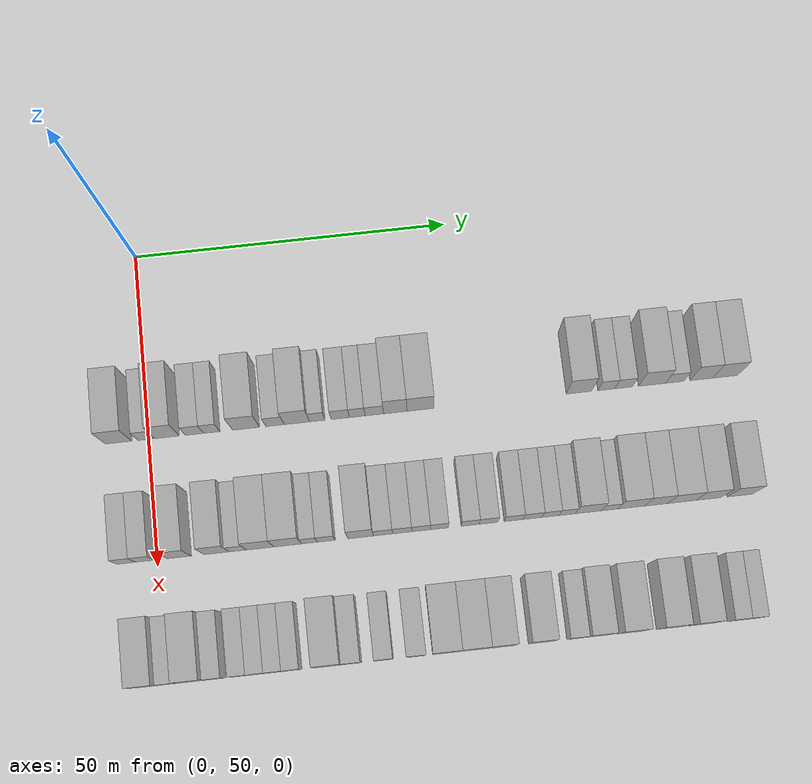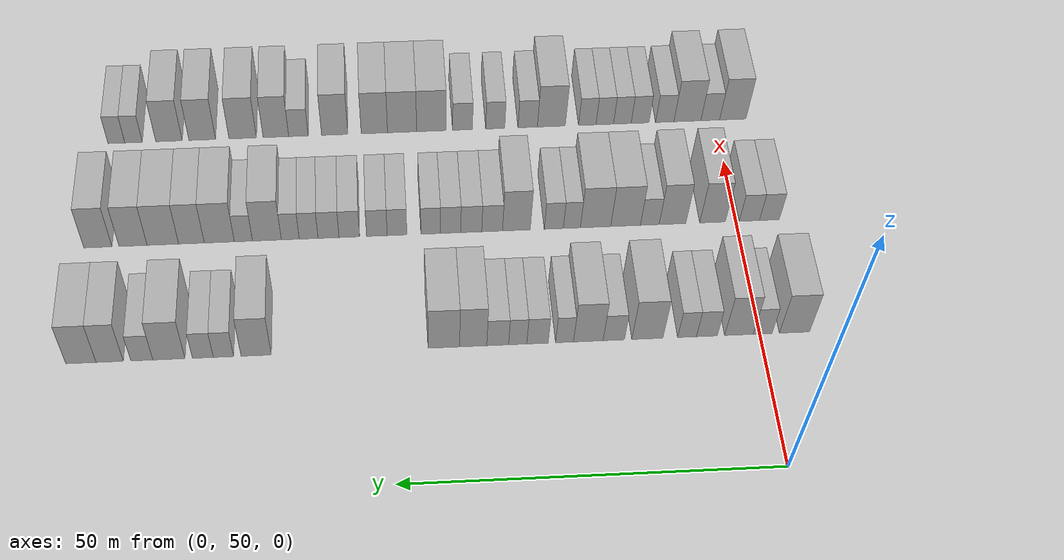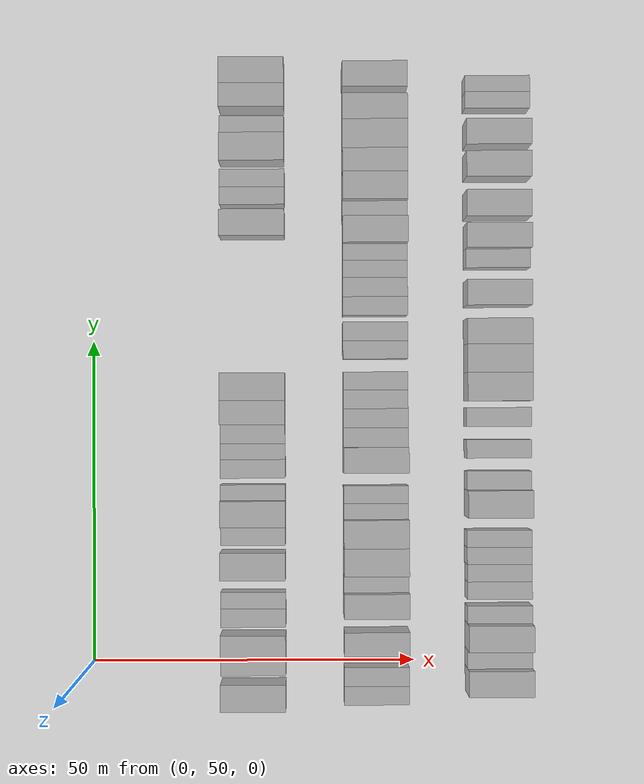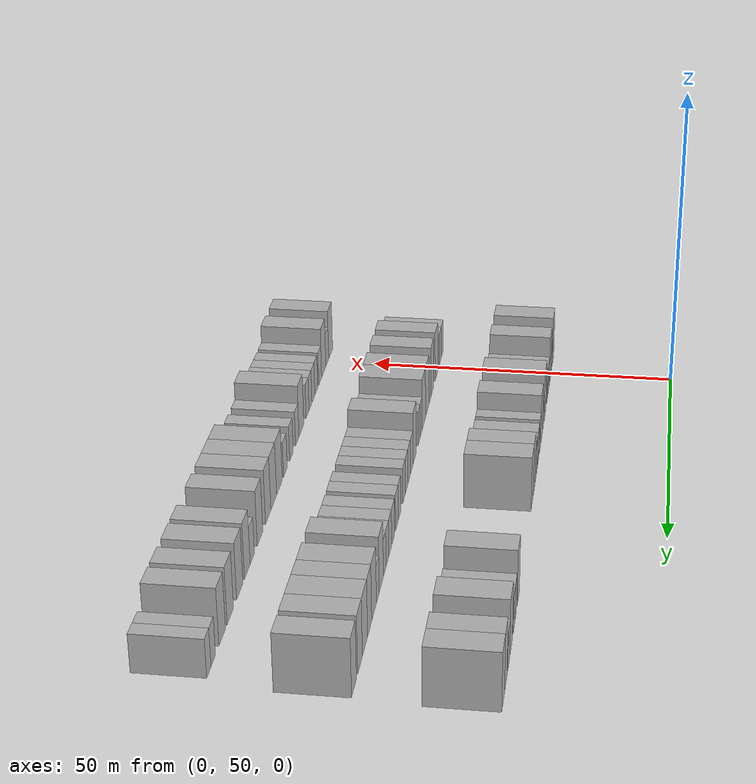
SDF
<sdf version="1.6">
 <world name="default">
  <model name="building_72">
   <static>1</static>
   <pose>25.0000 45.2590 0 0.000000 0.000000 0.000000</pose>
   <link name="link">
    <pose>0 0 4.50 0 0 0</pose>
    <collision name="collision"><geometry><box><size>10.0000 4.1278 9.0000</size></box></geometry></collision>
    <visual name="visual">
     <cast_shadows>0</cast_shadows>
     <geometry><box><size>10.0000 4.1278 9.0000</size></box></geometry>
     <material>
      <script>
       <uri>model://HANNAS_wall/materials/scripts</uri>
       <uri>model://HANNAS_wall/materials/textures</uri>
       <name>vrc/HANNAS_wall</name>
      </script>
     </material>
    </visual>
   </link>
  </model>
  <model name="building_73">
   <static>1</static>
   <pose>25.0000 49.6135 0 0.000000 0.000000 0.000000</pose>
   <link name="link">
    <pose>0 0 3.00 0 0 0</pose>
    <collision name="collision"><geometry><box><size>10.0000 2.5813 6.0000</size></box></geometry></collision>
    <visual name="visual">
     <cast_shadows>0</cast_shadows>
     <geometry><box><size>10.0000 2.5813 6.0000</size></box></geometry>
     <material>
      <script>
       <uri>model://HANNAS_wall/materials/scripts</uri>
       <uri>model://HANNAS_wall/materials/textures</uri>
       <name>vrc/HANNAS_wall</name>
      </script>
     </material>
    </visual>
   </link>
  </model>
  <model name="building_74">
   <static>1</static>
   <pose>25.0000 52.8461 0 0.000000 0.000000 0.000000</pose>
   <link name="link">
    <pose>0 0 4.50 0 0 0</pose>
    <collision name="collision"><geometry><box><size>10.0000 3.8839 9.0000</size></box></geometry></collision>
    <visual name="visual">
     <cast_shadows>0</cast_shadows>
     <geometry><box><size>10.0000 3.8839 9.0000</size></box></geometry>
     <material>
      <script>
       <uri>model://HANNAS_wall/materials/scripts</uri>
       <uri>model://HANNAS_wall/materials/textures</uri>
       <name>vrc/HANNAS_wall</name>
      </script>
     </material>
    </visual>
   </link>
  </model>
  <model name="building_75">
   <static>1</static>
   <pose>25.0000 57.2063 0 0.000000 0.000000 0.000000</pose>
   <link name="link">
    <pose>0 0 3.00 0 0 0</pose>
    <collision name="collision"><geometry><box><size>10.0000 2.8364 6.0000</size></box></geometry></collision>
    <visual name="visual">
     <cast_shadows>0</cast_shadows>
     <geometry><box><size>10.0000 2.8364 6.0000</size></box></geometry>
     <material>
      <script>
       <uri>model://HANNAS_wall/materials/scripts</uri>
       <uri>model://HANNAS_wall/materials/textures</uri>
       <name>vrc/HANNAS_wall</name>
      </script>
     </material>
    </visual>
   </link>
  </model>
  <model name="building_76">
   <static>1</static>
   <pose>25.0000 59.9047 0 0.000000 0.000000 0.000000</pose>
   <link name="link">
    <pose>0 0 3.00 0 0 0</pose>
    <collision name="collision"><geometry><box><size>10.0000 2.5603 6.0000</size></box></geometry></collision>
    <visual name="visual">
     <cast_shadows>0</cast_shadows>
     <geometry><box><size>10.0000 2.5603 6.0000</size></box></geometry>
     <material>
      <script>
       <uri>model://HANNAS_wall/materials/scripts</uri>
       <uri>model://HANNAS_wall/materials/textures</uri>
       <name>vrc/HANNAS_wall</name>
      </script>
     </material>
    </visual>
   </link>
  </model>
  <model name="building_77">
   <static>1</static>
   <pose>25.0000 65.2968 0 0.000000 0.000000 0.000000</pose>
   <link name="link">
    <pose>0 0 4.50 0 0 0</pose>
    <collision name="collision"><geometry><box><size>10.0000 4.2241 9.0000</size></box></geometry></collision>
    <visual name="visual">
     <cast_shadows>0</cast_shadows>
     <geometry><box><size>10.0000 4.2241 9.0000</size></box></geometry>
     <material>
      <script>
       <uri>model://HANNAS_wall/materials/scripts</uri>
       <uri>model://HANNAS_wall/materials/textures</uri>
       <name>vrc/HANNAS_wall</name>
      </script>
     </material>
    </visual>
   </link>
  </model>
  <model name="building_78">
   <static>1</static>
   <pose>25.0000 69.8525 0 0.000000 0.000000 0.000000</pose>
   <link name="link">
    <pose>0 0 3.00 0 0 0</pose>
    <collision name="collision"><geometry><box><size>10.0000 2.8872 6.0000</size></box></geometry></collision>
    <visual name="visual">
     <cast_shadows>0</cast_shadows>
     <geometry><box><size>10.0000 2.8872 6.0000</size></box></geometry>
     <material>
      <script>
       <uri>model://HANNAS_wall/materials/scripts</uri>
       <uri>model://HANNAS_wall/materials/textures</uri>
       <name>vrc/HANNAS_wall</name>
      </script>
     </material>
    </visual>
   </link>
  </model>
  <model name="building_79">
   <static>1</static>
   <pose>25.0000 73.3049 0 0.000000 0.000000 0.000000</pose>
   <link name="link">
    <pose>0 0 4.50 0 0 0</pose>
    <collision name="collision"><geometry><box><size>10.0000 4.0175 9.0000</size></box></geometry></collision>
    <visual name="visual">
     <cast_shadows>0</cast_shadows>
     <geometry><box><size>10.0000 4.0175 9.0000</size></box></geometry>
     <material>
      <script>
       <uri>model://HANNAS_wall/materials/scripts</uri>
       <uri>model://HANNAS_wall/materials/textures</uri>
       <name>vrc/HANNAS_wall</name>
      </script>
     </material>
    </visual>
   </link>
  </model>
  <model name="building_80">
   <static>1</static>
   <pose>25.0000 76.5276 0 0.000000 0.000000 0.000000</pose>
   <link name="link">
    <pose>0 0 3.00 0 0 0</pose>
    <collision name="collision"><geometry><box><size>10.0000 2.4277 6.0000</size></box></geometry></collision>
    <visual name="visual">
     <cast_shadows>0</cast_shadows>
     <geometry><box><size>10.0000 2.4277 6.0000</size></box></geometry>
     <material>
      <script>
       <uri>model://HANNAS_wall/materials/scripts</uri>
       <uri>model://HANNAS_wall/materials/textures</uri>
       <name>vrc/HANNAS_wall</name>
      </script>
     </material>
    </visual>
   </link>
  </model>
  <model name="building_81">
   <static>1</static>
   <pose>25.0000 80.1868 0 0.000000 0.000000 0.000000</pose>
   <link name="link">
    <pose>0 0 3.00 0 0 0</pose>
    <collision name="collision"><geometry><box><size>10.0000 2.8907 6.0000</size></box></geometry></collision>
    <visual name="visual">
     <cast_shadows>0</cast_shadows>
     <geometry><box><size>10.0000 2.8907 6.0000</size></box></geometry>
     <material>
      <script>
       <uri>model://HANNAS_wall/materials/scripts</uri>
       <uri>model://HANNAS_wall/materials/textures</uri>
       <name>vrc/HANNAS_wall</name>
      </script>
     </material>
    </visual>
   </link>
  </model>
  <model name="building_82">
   <static>1</static>
   <pose>25.0000 82.8594 0 0.000000 0.000000 0.000000</pose>
   <link name="link">
    <pose>0 0 3.00 0 0 0</pose>
    <collision name="collision"><geometry><box><size>10.0000 2.4546 6.0000</size></box></geometry></collision>
    <visual name="visual">
     <cast_shadows>0</cast_shadows>
     <geometry><box><size>10.0000 2.4546 6.0000</size></box></geometry>
     <material>
      <script>
       <uri>model://HANNAS_wall/materials/scripts</uri>
       <uri>model://HANNAS_wall/materials/textures</uri>
       <name>vrc/HANNAS_wall</name>
      </script>
     </material>
    </visual>
   </link>
  </model>
  <model name="building_83">
   <static>1</static>
   <pose>25.0000 85.5579 0 0.000000 0.000000 0.000000</pose>
   <link name="link">
    <pose>0 0 3.00 0 0 0</pose>
    <collision name="collision"><geometry><box><size>10.0000 2.9426 6.0000</size></box></geometry></collision>
    <visual name="visual">
     <cast_shadows>0</cast_shadows>
     <geometry><box><size>10.0000 2.9426 6.0000</size></box></geometry>
     <material>
      <script>
       <uri>model://HANNAS_wall/materials/scripts</uri>
       <uri>model://HANNAS_wall/materials/textures</uri>
       <name>vrc/HANNAS_wall</name>
      </script>
     </material>
    </visual>
   </link>
  </model>
  <model name="building_84">
   <static>1</static>
   <pose>25.0000 88.8644 0 0.000000 0.000000 0.000000</pose>
   <link name="link">
    <pose>0 0 4.50 0 0 0</pose>
    <collision name="collision"><geometry><box><size>10.0000 3.6703 9.0000</size></box></geometry></collision>
    <visual name="visual">
     <cast_shadows>0</cast_shadows>
     <geometry><box><size>10.0000 3.6703 9.0000</size></box></geometry>
     <material>
      <script>
       <uri>model://HANNAS_wall/materials/scripts</uri>
       <uri>model://HANNAS_wall/materials/textures</uri>
       <name>vrc/HANNAS_wall</name>
      </script>
     </material>
    </visual>
   </link>
  </model>
  <model name="building_85">
   <static>1</static>
   <pose>25.0000 92.8200 0 0.000000 0.000000 0.000000</pose>
   <link name="link">
    <pose>0 0 4.50 0 0 0</pose>
    <collision name="collision"><geometry><box><size>10.0000 4.2410 9.0000</size></box></geometry></collision>
    <visual name="visual">
     <cast_shadows>0</cast_shadows>
     <geometry><box><size>10.0000 4.2410 9.0000</size></box></geometry>
     <material>
      <script>
       <uri>model://HANNAS_wall/materials/scripts</uri>
       <uri>model://HANNAS_wall/materials/textures</uri>
       <name>vrc/HANNAS_wall</name>
      </script>
     </material>
    </visual>
   </link>
  </model>
  <model name="building_86">
   <static>1</static>
   <pose>25.0000 117.9891 0 0.000000 0.000000 0.000000</pose>
   <link name="link">
    <pose>0 0 4.50 0 0 0</pose>
    <collision name="collision"><geometry><box><size>10.0000 4.0324 9.0000</size></box></geometry></collision>
    <visual name="visual">
     <cast_shadows>0</cast_shadows>
     <geometry><box><size>10.0000 4.0324 9.0000</size></box></geometry>
     <material>
      <script>
       <uri>model://HANNAS_wall/materials/scripts</uri>
       <uri>model://HANNAS_wall/materials/textures</uri>
       <name>vrc/HANNAS_wall</name>
      </script>
     </material>
    </visual>
   </link>
  </model>
  <model name="building_87">
   <static>1</static>
   <pose>25.0000 122.3582 0 0.000000 0.000000 0.000000</pose>
   <link name="link">
    <pose>0 0 3.00 0 0 0</pose>
    <collision name="collision"><geometry><box><size>10.0000 2.7058 6.0000</size></box></geometry></collision>
    <visual name="visual">
     <cast_shadows>0</cast_shadows>
     <geometry><box><size>10.0000 2.7058 6.0000</size></box></geometry>
     <material>
      <script>
       <uri>model://HANNAS_wall/materials/scripts</uri>
       <uri>model://HANNAS_wall/materials/textures</uri>
       <name>vrc/HANNAS_wall</name>
      </script>
     </material>
    </visual>
   </link>
  </model>
  <model name="building_88">
   <static>1</static>
   <pose>25.0000 125.1025 0 0.000000 0.000000 0.000000</pose>
   <link name="link">
    <pose>0 0 3.00 0 0 0</pose>
    <collision name="collision"><geometry><box><size>10.0000 2.7828 6.0000</size></box></geometry></collision>
    <visual name="visual">
     <cast_shadows>0</cast_shadows>
     <geometry><box><size>10.0000 2.7828 6.0000</size></box></geometry>
     <material>
      <script>
       <uri>model://HANNAS_wall/materials/scripts</uri>
       <uri>model://HANNAS_wall/materials/textures</uri>
       <name>vrc/HANNAS_wall</name>
      </script>
     </material>
    </visual>
   </link>
  </model>
  <model name="building_89">
   <static>1</static>
   <pose>25.0000 129.6352 0 0.000000 0.000000 0.000000</pose>
   <link name="link">
    <pose>0 0 4.50 0 0 0</pose>
    <collision name="collision"><geometry><box><size>10.0000 4.2826 9.0000</size></box></geometry></collision>
    <visual name="visual">
     <cast_shadows>0</cast_shadows>
     <geometry><box><size>10.0000 4.2826 9.0000</size></box></geometry>
     <material>
      <script>
       <uri>model://HANNAS_wall/materials/scripts</uri>
       <uri>model://HANNAS_wall/materials/textures</uri>
       <name>vrc/HANNAS_wall</name>
      </script>
     </material>
    </visual>
   </link>
  </model>
  <model name="building_90">
   <static>1</static>
   <pose>25.0000 133.2391 0 0.000000 0.000000 0.000000</pose>
   <link name="link">
    <pose>0 0 3.00 0 0 0</pose>
    <collision name="collision"><geometry><box><size>10.0000 2.9250 6.0000</size></box></geometry></collision>
    <visual name="visual">
     <cast_shadows>0</cast_shadows>
     <geometry><box><size>10.0000 2.9250 6.0000</size></box></geometry>
     <material>
      <script>
       <uri>model://HANNAS_wall/materials/scripts</uri>
       <uri>model://HANNAS_wall/materials/textures</uri>
       <name>vrc/HANNAS_wall</name>
      </script>
     </material>
    </visual>
   </link>
  </model>
  <model name="building_91">
   <static>1</static>
   <pose>25.0000 137.5118 0 0.000000 0.000000 0.000000</pose>
   <link name="link">
    <pose>0 0 4.50 0 0 0</pose>
    <collision name="collision"><geometry><box><size>10.0000 3.6204 9.0000</size></box></geometry></collision>
    <visual name="visual">
     <cast_shadows>0</cast_shadows>
     <geometry><box><size>10.0000 3.6204 9.0000</size></box></geometry>
     <material>
      <script>
       <uri>model://HANNAS_wall/materials/scripts</uri>
       <uri>model://HANNAS_wall/materials/textures</uri>
       <name>vrc/HANNAS_wall</name>
      </script>
     </material>
    </visual>
   </link>
  </model>
  <model name="building_92">
   <static>1</static>
   <pose>25.0000 141.3296 0 0.000000 0.000000 0.000000</pose>
   <link name="link">
    <pose>0 0 4.50 0 0 0</pose>
    <collision name="collision"><geometry><box><size>10.0000 4.0152 9.0000</size></box></geometry></collision>
    <visual name="visual">
     <cast_shadows>0</cast_shadows>
     <geometry><box><size>10.0000 4.0152 9.0000</size></box></geometry>
     <material>
      <script>
       <uri>model://HANNAS_wall/materials/scripts</uri>
       <uri>model://HANNAS_wall/materials/textures</uri>
       <name>vrc/HANNAS_wall</name>
      </script>
     </material>
    </visual>
   </link>
  </model>
  <model name="building_194">
   <static>1</static>
   <pose>44.0000 45.2044 0 0.000000 0.000000 0.000000</pose>
   <link name="link">
    <pose>0 0 3.00 0 0 0</pose>
    <collision name="collision"><geometry><box><size>10.0000 2.8486 6.0000</size></box></geometry></collision>
    <visual name="visual">
     <cast_shadows>0</cast_shadows>
     <geometry><box><size>10.0000 2.8486 6.0000</size></box></geometry>
     <material>
      <script>
       <uri>model://HANNAS_wall/materials/scripts</uri>
       <uri>model://HANNAS_wall/materials/textures</uri>
       <name>vrc/HANNAS_wall</name>
      </script>
     </material>
    </visual>
   </link>
  </model>
  <model name="building_195">
   <static>1</static>
   <pose>44.0000 48.0867 0 0.000000 0.000000 0.000000</pose>
   <link name="link">
    <pose>0 0 3.00 0 0 0</pose>
    <collision name="collision"><geometry><box><size>10.0000 2.9161 6.0000</size></box></geometry></collision>
    <visual name="visual">
     <cast_shadows>0</cast_shadows>
     <geometry><box><size>10.0000 2.9161 6.0000</size></box></geometry>
     <material>
      <script>
       <uri>model://HANNAS_wall/materials/scripts</uri>
       <uri>model://HANNAS_wall/materials/textures</uri>
       <name>vrc/HANNAS_wall</name>
      </script>
     </material>
    </visual>
   </link>
  </model>
  <model name="building_196">
   <static>1</static>
   <pose>44.0000 53.3838 0 0.000000 0.000000 0.000000</pose>
   <link name="link">
    <pose>0 0 4.50 0 0 0</pose>
    <collision name="collision"><geometry><box><size>10.0000 3.6782 9.0000</size></box></geometry></collision>
    <visual name="visual">
     <cast_shadows>0</cast_shadows>
     <geometry><box><size>10.0000 3.6782 9.0000</size></box></geometry>
     <material>
      <script>
       <uri>model://HANNAS_wall/materials/scripts</uri>
       <uri>model://HANNAS_wall/materials/textures</uri>
       <name>vrc/HANNAS_wall</name>
      </script>
     </material>
    </visual>
   </link>
  </model>
  <model name="building_197">
   <static>1</static>
   <pose>44.0000 59.1406 0 0.000000 0.000000 0.000000</pose>
   <link name="link">
    <pose>0 0 4.50 0 0 0</pose>
    <collision name="collision"><geometry><box><size>10.0000 3.8353 9.0000</size></box></geometry></collision>
    <visual name="visual">
     <cast_shadows>0</cast_shadows>
     <geometry><box><size>10.0000 3.8353 9.0000</size></box></geometry>
     <material>
      <script>
       <uri>model://HANNAS_wall/materials/scripts</uri>
       <uri>model://HANNAS_wall/materials/textures</uri>
       <name>vrc/HANNAS_wall</name>
      </script>
     </material>
    </visual>
   </link>
  </model>
  <model name="building_198">
   <static>1</static>
   <pose>44.0000 62.3977 0 0.000000 0.000000 0.000000</pose>
   <link name="link">
    <pose>0 0 3.00 0 0 0</pose>
    <collision name="collision"><geometry><box><size>10.0000 2.6789 6.0000</size></box></geometry></collision>
    <visual name="visual">
     <cast_shadows>0</cast_shadows>
     <geometry><box><size>10.0000 2.6789 6.0000</size></box></geometry>
     <material>
      <script>
       <uri>model://HANNAS_wall/materials/scripts</uri>
       <uri>model://HANNAS_wall/materials/textures</uri>
       <name>vrc/HANNAS_wall</name>
      </script>
     </material>
    </visual>
   </link>
  </model>
  <model name="building_199">
   <static>1</static>
   <pose>44.0000 65.8658 0 0.000000 0.000000 0.000000</pose>
   <link name="link">
    <pose>0 0 4.50 0 0 0</pose>
    <collision name="collision"><geometry><box><size>10.0000 4.2574 9.0000</size></box></geometry></collision>
    <visual name="visual">
     <cast_shadows>0</cast_shadows>
     <geometry><box><size>10.0000 4.2574 9.0000</size></box></geometry>
     <material>
      <script>
       <uri>model://HANNAS_wall/materials/scripts</uri>
       <uri>model://HANNAS_wall/materials/textures</uri>
       <name>vrc/HANNAS_wall</name>
      </script>
     </material>
    </visual>
   </link>
  </model>
  <model name="building_200">
   <static>1</static>
   <pose>44.0000 70.1686 0 0.000000 0.000000 0.000000</pose>
   <link name="link">
    <pose>0 0 4.50 0 0 0</pose>
    <collision name="collision"><geometry><box><size>10.0000 4.3482 9.0000</size></box></geometry></collision>
    <visual name="visual">
     <cast_shadows>0</cast_shadows>
     <geometry><box><size>10.0000 4.3482 9.0000</size></box></geometry>
     <material>
      <script>
       <uri>model://HANNAS_wall/materials/scripts</uri>
       <uri>model://HANNAS_wall/materials/textures</uri>
       <name>vrc/HANNAS_wall</name>
      </script>
     </material>
    </visual>
   </link>
  </model>
  <model name="building_201">
   <static>1</static>
   <pose>44.0000 73.5586 0 0.000000 0.000000 0.000000</pose>
   <link name="link">
    <pose>0 0 3.00 0 0 0</pose>
    <collision name="collision"><geometry><box><size>10.0000 2.4319 6.0000</size></box></geometry></collision>
    <visual name="visual">
     <cast_shadows>0</cast_shadows>
     <geometry><box><size>10.0000 2.4319 6.0000</size></box></geometry>
     <material>
      <script>
       <uri>model://HANNAS_wall/materials/scripts</uri>
       <uri>model://HANNAS_wall/materials/textures</uri>
       <name>vrc/HANNAS_wall</name>
      </script>
     </material>
    </visual>
   </link>
  </model>
  <model name="building_202">
   <static>1</static>
   <pose>44.0000 76.1406 0 0.000000 0.000000 0.000000</pose>
   <link name="link">
    <pose>0 0 3.00 0 0 0</pose>
    <collision name="collision"><geometry><box><size>10.0000 2.7321 6.0000</size></box></geometry></collision>
    <visual name="visual">
     <cast_shadows>0</cast_shadows>
     <geometry><box><size>10.0000 2.7321 6.0000</size></box></geometry>
     <material>
      <script>
       <uri>model://HANNAS_wall/materials/scripts</uri>
       <uri>model://HANNAS_wall/materials/textures</uri>
       <name>vrc/HANNAS_wall</name>
      </script>
     </material>
    </visual>
   </link>
  </model>
  <model name="building_203">
   <static>1</static>
   <pose>44.0000 81.4835 0 0.000000 0.000000 0.000000</pose>
   <link name="link">
    <pose>0 0 4.50 0 0 0</pose>
    <collision name="collision"><geometry><box><size>10.0000 3.9537 9.0000</size></box></geometry></collision>
    <visual name="visual">
     <cast_shadows>0</cast_shadows>
     <geometry><box><size>10.0000 3.9537 9.0000</size></box></geometry>
     <material>
      <script>
       <uri>model://HANNAS_wall/materials/scripts</uri>
       <uri>model://HANNAS_wall/materials/textures</uri>
       <name>vrc/HANNAS_wall</name>
      </script>
     </material>
    </visual>
   </link>
  </model>
  <model name="building_204">
   <static>1</static>
   <pose>44.0000 84.9421 0 0.000000 0.000000 0.000000</pose>
   <link name="link">
    <pose>0 0 3.00 0 0 0</pose>
    <collision name="collision"><geometry><box><size>10.0000 2.9635 6.0000</size></box></geometry></collision>
    <visual name="visual">
     <cast_shadows>0</cast_shadows>
     <geometry><box><size>10.0000 2.9635 6.0000</size></box></geometry>
     <material>
      <script>
       <uri>model://HANNAS_wall/materials/scripts</uri>
       <uri>model://HANNAS_wall/materials/textures</uri>
       <name>vrc/HANNAS_wall</name>
      </script>
     </material>
    </visual>
   </link>
  </model>
  <model name="building_205">
   <static>1</static>
   <pose>44.0000 87.9154 0 0.000000 0.000000 0.000000</pose>
   <link name="link">
    <pose>0 0 3.00 0 0 0</pose>
    <collision name="collision"><geometry><box><size>10.0000 2.9830 6.0000</size></box></geometry></collision>
    <visual name="visual">
     <cast_shadows>0</cast_shadows>
     <geometry><box><size>10.0000 2.9830 6.0000</size></box></geometry>
     <material>
      <script>
       <uri>model://HANNAS_wall/materials/scripts</uri>
       <uri>model://HANNAS_wall/materials/textures</uri>
       <name>vrc/HANNAS_wall</name>
      </script>
     </material>
    </visual>
   </link>
  </model>
  <model name="building_206">
   <static>1</static>
   <pose>44.0000 90.8503 0 0.000000 0.000000 0.000000</pose>
   <link name="link">
    <pose>0 0 3.00 0 0 0</pose>
    <collision name="collision"><geometry><box><size>10.0000 2.8868 6.0000</size></box></geometry></collision>
    <visual name="visual">
     <cast_shadows>0</cast_shadows>
     <geometry><box><size>10.0000 2.8868 6.0000</size></box></geometry>
     <material>
      <script>
       <uri>model://HANNAS_wall/materials/scripts</uri>
       <uri>model://HANNAS_wall/materials/textures</uri>
       <name>vrc/HANNAS_wall</name>
      </script>
     </material>
    </visual>
   </link>
  </model>
  <model name="building_207">
   <static>1</static>
   <pose>44.0000 93.6843 0 0.000000 0.000000 0.000000</pose>
   <link name="link">
    <pose>0 0 3.00 0 0 0</pose>
    <collision name="collision"><geometry><box><size>10.0000 2.7811 6.0000</size></box></geometry></collision>
    <visual name="visual">
     <cast_shadows>0</cast_shadows>
     <geometry><box><size>10.0000 2.7811 6.0000</size></box></geometry>
     <material>
      <script>
       <uri>model://HANNAS_wall/materials/scripts</uri>
       <uri>model://HANNAS_wall/materials/textures</uri>
       <name>vrc/HANNAS_wall</name>
      </script>
     </material>
    </visual>
   </link>
  </model>
  <model name="building_208">
   <static>1</static>
   <pose>44.0000 98.4680 0 0.000000 0.000000 0.000000</pose>
   <link name="link">
    <pose>0 0 3.00 0 0 0</pose>
    <collision name="collision"><geometry><box><size>10.0000 2.7864 6.0000</size></box></geometry></collision>
    <visual name="visual">
     <cast_shadows>0</cast_shadows>
     <geometry><box><size>10.0000 2.7864 6.0000</size></box></geometry>
     <material>
      <script>
       <uri>model://HANNAS_wall/materials/scripts</uri>
       <uri>model://HANNAS_wall/materials/textures</uri>
       <name>vrc/HANNAS_wall</name>
      </script>
     </material>
    </visual>
   </link>
  </model>
  <model name="building_209">
   <static>1</static>
   <pose>44.0000 101.3185 0 0.000000 0.000000 0.000000</pose>
   <link name="link">
    <pose>0 0 3.00 0 0 0</pose>
    <collision name="collision"><geometry><box><size>10.0000 2.9147 6.0000</size></box></geometry></collision>
    <visual name="visual">
     <cast_shadows>0</cast_shadows>
     <geometry><box><size>10.0000 2.9147 6.0000</size></box></geometry>
     <material>
      <script>
       <uri>model://HANNAS_wall/materials/scripts</uri>
       <uri>model://HANNAS_wall/materials/textures</uri>
       <name>vrc/HANNAS_wall</name>
      </script>
     </material>
    </visual>
   </link>
  </model>
  <model name="building_210">
   <static>1</static>
   <pose>44.0000 105.2322 0 0.000000 0.000000 0.000000</pose>
   <link name="link">
    <pose>0 0 3.00 0 0 0</pose>
    <collision name="collision"><geometry><box><size>10.0000 2.9128 6.0000</size></box></geometry></collision>
    <visual name="visual">
     <cast_shadows>0</cast_shadows>
     <geometry><box><size>10.0000 2.9128 6.0000</size></box></geometry>
     <material>
      <script>
       <uri>model://HANNAS_wall/materials/scripts</uri>
       <uri>model://HANNAS_wall/materials/textures</uri>
       <name>vrc/HANNAS_wall</name>
      </script>
     </material>
    </visual>
   </link>
  </model>
  <model name="building_211">
   <static>1</static>
   <pose>44.0000 108.1753 0 0.000000 0.000000 0.000000</pose>
   <link name="link">
    <pose>0 0 3.00 0 0 0</pose>
    <collision name="collision"><geometry><box><size>10.0000 2.9734 6.0000</size></box></geometry></collision>
    <visual name="visual">
     <cast_shadows>0</cast_shadows>
     <geometry><box><size>10.0000 2.9734 6.0000</size></box></geometry>
     <material>
      <script>
       <uri>model://HANNAS_wall/materials/scripts</uri>
       <uri>model://HANNAS_wall/materials/textures</uri>
       <name>vrc/HANNAS_wall</name>
      </script>
     </material>
    </visual>
   </link>
  </model>
  <model name="building_212">
   <static>1</static>
   <pose>44.0000 110.9899 0 0.000000 0.000000 0.000000</pose>
   <link name="link">
    <pose>0 0 3.00 0 0 0</pose>
    <collision name="collision"><geometry><box><size>10.0000 2.6558 6.0000</size></box></geometry></collision>
    <visual name="visual">
     <cast_shadows>0</cast_shadows>
     <geometry><box><size>10.0000 2.6558 6.0000</size></box></geometry>
     <material>
      <script>
       <uri>model://HANNAS_wall/materials/scripts</uri>
       <uri>model://HANNAS_wall/materials/textures</uri>
       <name>vrc/HANNAS_wall</name>
      </script>
     </material>
    </visual>
   </link>
  </model>
  <model name="building_213">
   <static>1</static>
   <pose>44.0000 113.5839 0 0.000000 0.000000 0.000000</pose>
   <link name="link">
    <pose>0 0 3.00 0 0 0</pose>
    <collision name="collision"><geometry><box><size>10.0000 2.5323 6.0000</size></box></geometry></collision>
    <visual name="visual">
     <cast_shadows>0</cast_shadows>
     <geometry><box><size>10.0000 2.5323 6.0000</size></box></geometry>
     <material>
      <script>
       <uri>model://HANNAS_wall/materials/scripts</uri>
       <uri>model://HANNAS_wall/materials/textures</uri>
       <name>vrc/HANNAS_wall</name>
      </script>
     </material>
    </visual>
   </link>
  </model>
  <model name="building_214">
   <static>1</static>
   <pose>44.0000 116.8891 0 0.000000 0.000000 0.000000</pose>
   <link name="link">
    <pose>0 0 4.50 0 0 0</pose>
    <collision name="collision"><geometry><box><size>10.0000 4.0782 9.0000</size></box></geometry></collision>
    <visual name="visual">
     <cast_shadows>0</cast_shadows>
     <geometry><box><size>10.0000 4.0782 9.0000</size></box></geometry>
     <material>
      <script>
       <uri>model://HANNAS_wall/materials/scripts</uri>
       <uri>model://HANNAS_wall/materials/textures</uri>
       <name>vrc/HANNAS_wall</name>
      </script>
     </material>
    </visual>
   </link>
  </model>
  <model name="building_215">
   <static>1</static>
   <pose>44.0000 120.2069 0 0.000000 0.000000 0.000000</pose>
   <link name="link">
    <pose>0 0 3.00 0 0 0</pose>
    <collision name="collision"><geometry><box><size>10.0000 2.5573 6.0000</size></box></geometry></collision>
    <visual name="visual">
     <cast_shadows>0</cast_shadows>
     <geometry><box><size>10.0000 2.5573 6.0000</size></box></geometry>
     <material>
      <script>
       <uri>model://HANNAS_wall/materials/scripts</uri>
       <uri>model://HANNAS_wall/materials/textures</uri>
       <name>vrc/HANNAS_wall</name>
      </script>
     </material>
    </visual>
   </link>
  </model>
  <model name="building_216">
   <static>1</static>
   <pose>44.0000 123.6077 0 0.000000 0.000000 0.000000</pose>
   <link name="link">
    <pose>0 0 4.50 0 0 0</pose>
    <collision name="collision"><geometry><box><size>10.0000 4.2443 9.0000</size></box></geometry></collision>
    <visual name="visual">
     <cast_shadows>0</cast_shadows>
     <geometry><box><size>10.0000 4.2443 9.0000</size></box></geometry>
     <material>
      <script>
       <uri>model://HANNAS_wall/materials/scripts</uri>
       <uri>model://HANNAS_wall/materials/textures</uri>
       <name>vrc/HANNAS_wall</name>
      </script>
     </material>
    </visual>
   </link>
  </model>
  <model name="building_217">
   <static>1</static>
   <pose>44.0000 127.5330 0 0.000000 0.000000 0.000000</pose>
   <link name="link">
    <pose>0 0 4.50 0 0 0</pose>
    <collision name="collision"><geometry><box><size>10.0000 3.6064 9.0000</size></box></geometry></collision>
    <visual name="visual">
     <cast_shadows>0</cast_shadows>
     <geometry><box><size>10.0000 3.6064 9.0000</size></box></geometry>
     <material>
      <script>
       <uri>model://HANNAS_wall/materials/scripts</uri>
       <uri>model://HANNAS_wall/materials/textures</uri>
       <name>vrc/HANNAS_wall</name>
      </script>
     </material>
    </visual>
   </link>
  </model>
  <model name="building_218">
   <static>1</static>
   <pose>44.0000 131.5569 0 0.000000 0.000000 0.000000</pose>
   <link name="link">
    <pose>0 0 4.50 0 0 0</pose>
    <collision name="collision"><geometry><box><size>10.0000 4.4414 9.0000</size></box></geometry></collision>
    <visual name="visual">
     <cast_shadows>0</cast_shadows>
     <geometry><box><size>10.0000 4.4414 9.0000</size></box></geometry>
     <material>
      <script>
       <uri>model://HANNAS_wall/materials/scripts</uri>
       <uri>model://HANNAS_wall/materials/textures</uri>
       <name>vrc/HANNAS_wall</name>
      </script>
     </material>
    </visual>
   </link>
  </model>
  <model name="building_219">
   <static>1</static>
   <pose>44.0000 135.7468 0 0.000000 0.000000 0.000000</pose>
   <link name="link">
    <pose>0 0 4.50 0 0 0</pose>
    <collision name="collision"><geometry><box><size>10.0000 3.9384 9.0000</size></box></geometry></collision>
    <visual name="visual">
     <cast_shadows>0</cast_shadows>
     <geometry><box><size>10.0000 3.9384 9.0000</size></box></geometry>
     <material>
      <script>
       <uri>model://HANNAS_wall/materials/scripts</uri>
       <uri>model://HANNAS_wall/materials/textures</uri>
       <name>vrc/HANNAS_wall</name>
      </script>
     </material>
    </visual>
   </link>
  </model>
  <model name="building_220">
   <static>1</static>
   <pose>44.0000 140.6862 0 0.000000 0.000000 0.000000</pose>
   <link name="link">
    <pose>0 0 4.50 0 0 0</pose>
    <collision name="collision"><geometry><box><size>10.0000 3.9405 9.0000</size></box></geometry></collision>
    <visual name="visual">
     <cast_shadows>0</cast_shadows>
     <geometry><box><size>10.0000 3.9405 9.0000</size></box></geometry>
     <material>
      <script>
       <uri>model://HANNAS_wall/materials/scripts</uri>
       <uri>model://HANNAS_wall/materials/textures</uri>
       <name>vrc/HANNAS_wall</name>
      </script>
     </material>
    </visual>
   </link>
  </model>
  <model name="building_312">
   <static>1</static>
   <pose>63.0000 47.2674 0 0.000000 0.000000 0.000000</pose>
   <link name="link">
    <pose>0 0 4.50 0 0 0</pose>
    <collision name="collision"><geometry><box><size>10.0000 3.9818 9.0000</size></box></geometry></collision>
    <visual name="visual">
     <cast_shadows>0</cast_shadows>
     <geometry><box><size>10.0000 3.9818 9.0000</size></box></geometry>
     <material>
      <script>
       <uri>model://HANNAS_wall/materials/scripts</uri>
       <uri>model://HANNAS_wall/materials/textures</uri>
       <name>vrc/HANNAS_wall</name>
      </script>
     </material>
    </visual>
   </link>
  </model>
  <model name="building_313">
   <static>1</static>
   <pose>63.0000 50.6756 0 0.000000 0.000000 0.000000</pose>
   <link name="link">
    <pose>0 0 3.00 0 0 0</pose>
    <collision name="collision"><geometry><box><size>10.0000 2.8346 6.0000</size></box></geometry></collision>
    <visual name="visual">
     <cast_shadows>0</cast_shadows>
     <geometry><box><size>10.0000 2.8346 6.0000</size></box></geometry>
     <material>
      <script>
       <uri>model://HANNAS_wall/materials/scripts</uri>
       <uri>model://HANNAS_wall/materials/textures</uri>
       <name>vrc/HANNAS_wall</name>
      </script>
     </material>
    </visual>
   </link>
  </model>
  <model name="building_314">
   <static>1</static>
   <pose>63.0000 54.1407 0 0.000000 0.000000 0.000000</pose>
   <link name="link">
    <pose>0 0 4.50 0 0 0</pose>
    <collision name="collision"><geometry><box><size>10.0000 4.0956 9.0000</size></box></geometry></collision>
    <visual name="visual">
     <cast_shadows>0</cast_shadows>
     <geometry><box><size>10.0000 4.0956 9.0000</size></box></geometry>
     <material>
      <script>
       <uri>model://HANNAS_wall/materials/scripts</uri>
       <uri>model://HANNAS_wall/materials/textures</uri>
       <name>vrc/HANNAS_wall</name>
      </script>
     </material>
    </visual>
   </link>
  </model>
  <model name="building_315">
   <static>1</static>
   <pose>63.0000 57.5713 0 0.000000 0.000000 0.000000</pose>
   <link name="link">
    <pose>0 0 3.00 0 0 0</pose>
    <collision name="collision"><geometry><box><size>10.0000 2.7656 6.0000</size></box></geometry></collision>
    <visual name="visual">
     <cast_shadows>0</cast_shadows>
     <geometry><box><size>10.0000 2.7656 6.0000</size></box></geometry>
     <material>
      <script>
       <uri>model://HANNAS_wall/materials/scripts</uri>
       <uri>model://HANNAS_wall/materials/textures</uri>
       <name>vrc/HANNAS_wall</name>
      </script>
     </material>
    </visual>
   </link>
  </model>
  <model name="building_316">
   <static>1</static>
   <pose>63.0000 61.2985 0 0.000000 0.000000 0.000000</pose>
   <link name="link">
    <pose>0 0 3.00 0 0 0</pose>
    <collision name="collision"><geometry><box><size>10.0000 2.6888 6.0000</size></box></geometry></collision>
    <visual name="visual">
     <cast_shadows>0</cast_shadows>
     <geometry><box><size>10.0000 2.6888 6.0000</size></box></geometry>
     <material>
      <script>
       <uri>model://HANNAS_wall/materials/scripts</uri>
       <uri>model://HANNAS_wall/materials/textures</uri>
       <name>vrc/HANNAS_wall</name>
      </script>
     </material>
    </visual>
   </link>
  </model>
  <model name="building_317">
   <static>1</static>
   <pose>63.0000 63.9723 0 0.000000 0.000000 0.000000</pose>
   <link name="link">
    <pose>0 0 3.00 0 0 0</pose>
    <collision name="collision"><geometry><box><size>10.0000 2.6589 6.0000</size></box></geometry></collision>
    <visual name="visual">
     <cast_shadows>0</cast_shadows>
     <geometry><box><size>10.0000 2.6589 6.0000</size></box></geometry>
     <material>
      <script>
       <uri>model://HANNAS_wall/materials/scripts</uri>
       <uri>model://HANNAS_wall/materials/textures</uri>
       <name>vrc/HANNAS_wall</name>
      </script>
     </material>
    </visual>
   </link>
  </model>
  <model name="building_318">
   <static>1</static>
   <pose>63.0000 66.6228 0 0.000000 0.000000 0.000000</pose>
   <link name="link">
    <pose>0 0 3.00 0 0 0</pose>
    <collision name="collision"><geometry><box><size>10.0000 2.6421 6.0000</size></box></geometry></collision>
    <visual name="visual">
     <cast_shadows>0</cast_shadows>
     <geometry><box><size>10.0000 2.6421 6.0000</size></box></geometry>
     <material>
      <script>
       <uri>model://HANNAS_wall/materials/scripts</uri>
       <uri>model://HANNAS_wall/materials/textures</uri>
       <name>vrc/HANNAS_wall</name>
      </script>
     </material>
    </visual>
   </link>
  </model>
  <model name="building_319">
   <static>1</static>
   <pose>63.0000 69.2598 0 0.000000 0.000000 0.000000</pose>
   <link name="link">
    <pose>0 0 3.00 0 0 0</pose>
    <collision name="collision"><geometry><box><size>10.0000 2.6320 6.0000</size></box></geometry></collision>
    <visual name="visual">
     <cast_shadows>0</cast_shadows>
     <geometry><box><size>10.0000 2.6320 6.0000</size></box></geometry>
     <material>
      <script>
       <uri>model://HANNAS_wall/materials/scripts</uri>
       <uri>model://HANNAS_wall/materials/textures</uri>
       <name>vrc/HANNAS_wall</name>
      </script>
     </material>
    </visual>
   </link>
  </model>
  <model name="building_320">
   <static>1</static>
   <pose>63.0000 74.6760 0 0.000000 0.000000 0.000000</pose>
   <link name="link">
    <pose>0 0 4.50 0 0 0</pose>
    <collision name="collision"><geometry><box><size>10.0000 4.2003 9.0000</size></box></geometry></collision>
    <visual name="visual">
     <cast_shadows>0</cast_shadows>
     <geometry><box><size>10.0000 4.2003 9.0000</size></box></geometry>
     <material>
      <script>
       <uri>model://HANNAS_wall/materials/scripts</uri>
       <uri>model://HANNAS_wall/materials/textures</uri>
       <name>vrc/HANNAS_wall</name>
      </script>
     </material>
    </visual>
   </link>
  </model>
  <model name="building_321">
   <static>1</static>
   <pose>63.0000 78.2310 0 0.000000 0.000000 0.000000</pose>
   <link name="link">
    <pose>0 0 3.00 0 0 0</pose>
    <collision name="collision"><geometry><box><size>10.0000 2.9095 6.0000</size></box></geometry></collision>
    <visual name="visual">
     <cast_shadows>0</cast_shadows>
     <geometry><box><size>10.0000 2.9095 6.0000</size></box></geometry>
     <material>
      <script>
       <uri>model://HANNAS_wall/materials/scripts</uri>
       <uri>model://HANNAS_wall/materials/textures</uri>
       <name>vrc/HANNAS_wall</name>
      </script>
     </material>
    </visual>
   </link>
  </model>
  <model name="building_322">
   <static>1</static>
   <pose>63.0000 83.1095 0 0.000000 0.000000 0.000000</pose>
   <link name="link">
    <pose>0 0 3.00 0 0 0</pose>
    <collision name="collision"><geometry><box><size>10.0000 2.8476 6.0000</size></box></geometry></collision>
    <visual name="visual">
     <cast_shadows>0</cast_shadows>
     <geometry><box><size>10.0000 2.8476 6.0000</size></box></geometry>
     <material>
      <script>
       <uri>model://HANNAS_wall/materials/scripts</uri>
       <uri>model://HANNAS_wall/materials/textures</uri>
       <name>vrc/HANNAS_wall</name>
      </script>
     </material>
    </visual>
   </link>
  </model>
  <model name="building_323">
   <static>1</static>
   <pose>63.0000 88.0182 0 0.000000 0.000000 0.000000</pose>
   <link name="link">
    <pose>0 0 3.00 0 0 0</pose>
    <collision name="collision"><geometry><box><size>10.0000 2.9697 6.0000</size></box></geometry></collision>
    <visual name="visual">
     <cast_shadows>0</cast_shadows>
     <geometry><box><size>10.0000 2.9697 6.0000</size></box></geometry>
     <material>
      <script>
       <uri>model://HANNAS_wall/materials/scripts</uri>
       <uri>model://HANNAS_wall/materials/textures</uri>
       <name>vrc/HANNAS_wall</name>
      </script>
     </material>
    </visual>
   </link>
  </model>
  <model name="building_324">
   <static>1</static>
   <pose>63.0000 92.7010 0 0.000000 0.000000 0.000000</pose>
   <link name="link">
    <pose>0 0 4.50 0 0 0</pose>
    <collision name="collision"><geometry><box><size>10.0000 4.3959 9.0000</size></box></geometry></collision>
    <visual name="visual">
     <cast_shadows>0</cast_shadows>
     <geometry><box><size>10.0000 4.3959 9.0000</size></box></geometry>
     <material>
      <script>
       <uri>model://HANNAS_wall/materials/scripts</uri>
       <uri>model://HANNAS_wall/materials/textures</uri>
       <name>vrc/HANNAS_wall</name>
      </script>
     </material>
    </visual>
   </link>
  </model>
  <model name="building_325">
   <static>1</static>
   <pose>63.0000 97.0711 0 0.000000 0.000000 0.000000</pose>
   <link name="link">
    <pose>0 0 4.50 0 0 0</pose>
    <collision name="collision"><geometry><box><size>10.0000 4.3443 9.0000</size></box></geometry></collision>
    <visual name="visual">
     <cast_shadows>0</cast_shadows>
     <geometry><box><size>10.0000 4.3443 9.0000</size></box></geometry>
     <material>
      <script>
       <uri>model://HANNAS_wall/materials/scripts</uri>
       <uri>model://HANNAS_wall/materials/textures</uri>
       <name>vrc/HANNAS_wall</name>
      </script>
     </material>
    </visual>
   </link>
  </model>
  <model name="building_326">
   <static>1</static>
   <pose>63.0000 101.2073 0 0.000000 0.000000 0.000000</pose>
   <link name="link">
    <pose>0 0 4.50 0 0 0</pose>
    <collision name="collision"><geometry><box><size>10.0000 3.9281 9.0000</size></box></geometry></collision>
    <visual name="visual">
     <cast_shadows>0</cast_shadows>
     <geometry><box><size>10.0000 3.9281 9.0000</size></box></geometry>
     <material>
      <script>
       <uri>model://HANNAS_wall/materials/scripts</uri>
       <uri>model://HANNAS_wall/materials/textures</uri>
       <name>vrc/HANNAS_wall</name>
      </script>
     </material>
    </visual>
   </link>
  </model>
  <model name="building_327">
   <static>1</static>
   <pose>63.0000 107.1279 0 0.000000 0.000000 0.000000</pose>
   <link name="link">
    <pose>0 0 4.50 0 0 0</pose>
    <collision name="collision"><geometry><box><size>10.0000 3.9131 9.0000</size></box></geometry></collision>
    <visual name="visual">
     <cast_shadows>0</cast_shadows>
     <geometry><box><size>10.0000 3.9131 9.0000</size></box></geometry>
     <material>
      <script>
       <uri>model://HANNAS_wall/materials/scripts</uri>
       <uri>model://HANNAS_wall/materials/textures</uri>
       <name>vrc/HANNAS_wall</name>
      </script>
     </material>
    </visual>
   </link>
  </model>
  <model name="building_328">
   <static>1</static>
   <pose>63.0000 112.5363 0 0.000000 0.000000 0.000000</pose>
   <link name="link">
    <pose>0 0 3.00 0 0 0</pose>
    <collision name="collision"><geometry><box><size>10.0000 2.9037 6.0000</size></box></geometry></collision>
    <visual name="visual">
     <cast_shadows>0</cast_shadows>
     <geometry><box><size>10.0000 2.9037 6.0000</size></box></geometry>
     <material>
      <script>
       <uri>model://HANNAS_wall/materials/scripts</uri>
       <uri>model://HANNAS_wall/materials/textures</uri>
       <name>vrc/HANNAS_wall</name>
      </script>
     </material>
    </visual>
   </link>
  </model>
  <model name="building_329">
   <static>1</static>
   <pose>63.0000 115.8878 0 0.000000 0.000000 0.000000</pose>
   <link name="link">
    <pose>0 0 4.50 0 0 0</pose>
    <collision name="collision"><geometry><box><size>10.0000 3.7993 9.0000</size></box></geometry></collision>
    <visual name="visual">
     <cast_shadows>0</cast_shadows>
     <geometry><box><size>10.0000 3.7993 9.0000</size></box></geometry>
     <material>
      <script>
       <uri>model://HANNAS_wall/materials/scripts</uri>
       <uri>model://HANNAS_wall/materials/textures</uri>
       <name>vrc/HANNAS_wall</name>
      </script>
     </material>
    </visual>
   </link>
  </model>
  <model name="building_330">
   <static>1</static>
   <pose>63.0000 120.8244 0 0.000000 0.000000 0.000000</pose>
   <link name="link">
    <pose>0 0 4.50 0 0 0</pose>
    <collision name="collision"><geometry><box><size>10.0000 4.0738 9.0000</size></box></geometry></collision>
    <visual name="visual">
     <cast_shadows>0</cast_shadows>
     <geometry><box><size>10.0000 4.0738 9.0000</size></box></geometry>
     <material>
      <script>
       <uri>model://HANNAS_wall/materials/scripts</uri>
       <uri>model://HANNAS_wall/materials/textures</uri>
       <name>vrc/HANNAS_wall</name>
      </script>
     </material>
    </visual>
   </link>
  </model>
  <model name="building_331">
   <static>1</static>
   <pose>63.0000 126.8342 0 0.000000 0.000000 0.000000</pose>
   <link name="link">
    <pose>0 0 4.50 0 0 0</pose>
    <collision name="collision"><geometry><box><size>10.0000 3.9460 9.0000</size></box></geometry></collision>
    <visual name="visual">
     <cast_shadows>0</cast_shadows>
     <geometry><box><size>10.0000 3.9460 9.0000</size></box></geometry>
     <material>
      <script>
       <uri>model://HANNAS_wall/materials/scripts</uri>
       <uri>model://HANNAS_wall/materials/textures</uri>
       <name>vrc/HANNAS_wall</name>
      </script>
     </material>
    </visual>
   </link>
  </model>
  <model name="building_332">
   <static>1</static>
   <pose>63.0000 131.7673 0 0.000000 0.000000 0.000000</pose>
   <link name="link">
    <pose>0 0 4.50 0 0 0</pose>
    <collision name="collision"><geometry><box><size>10.0000 3.9201 9.0000</size></box></geometry></collision>
    <visual name="visual">
     <cast_shadows>0</cast_shadows>
     <geometry><box><size>10.0000 3.9201 9.0000</size></box></geometry>
     <material>
      <script>
       <uri>model://HANNAS_wall/materials/scripts</uri>
       <uri>model://HANNAS_wall/materials/textures</uri>
       <name>vrc/HANNAS_wall</name>
      </script>
     </material>
    </visual>
   </link>
  </model>
  <model name="building_333">
   <static>1</static>
   <pose>63.0000 137.0217 0 0.000000 0.000000 0.000000</pose>
   <link name="link">
    <pose>0 0 3.00 0 0 0</pose>
    <collision name="collision"><geometry><box><size>10.0000 2.5889 6.0000</size></box></geometry></collision>
    <visual name="visual">
     <cast_shadows>0</cast_shadows>
     <geometry><box><size>10.0000 2.5889 6.0000</size></box></geometry>
     <material>
      <script>
       <uri>model://HANNAS_wall/materials/scripts</uri>
       <uri>model://HANNAS_wall/materials/textures</uri>
       <name>vrc/HANNAS_wall</name>
      </script>
     </material>
    </visual>
   </link>
  </model>
  <model name="building_334">
   <static>1</static>
   <pose>63.0000 139.5587 0 0.000000 0.000000 0.000000</pose>
   <link name="link">
    <pose>0 0 3.00 0 0 0</pose>
    <collision name="collision"><geometry><box><size>10.0000 2.4850 6.0000</size></box></geometry></collision>
    <visual name="visual">
     <cast_shadows>0</cast_shadows>
     <geometry><box><size>10.0000 2.4850 6.0000</size></box></geometry>
     <material>
      <script>
       <uri>model://HANNAS_wall/materials/scripts</uri>
       <uri>model://HANNAS_wall/materials/textures</uri>
       <name>vrc/HANNAS_wall</name>
      </script>
     </material>
    </visual>
   </link>
  </model>
 </world>
</sdf>
